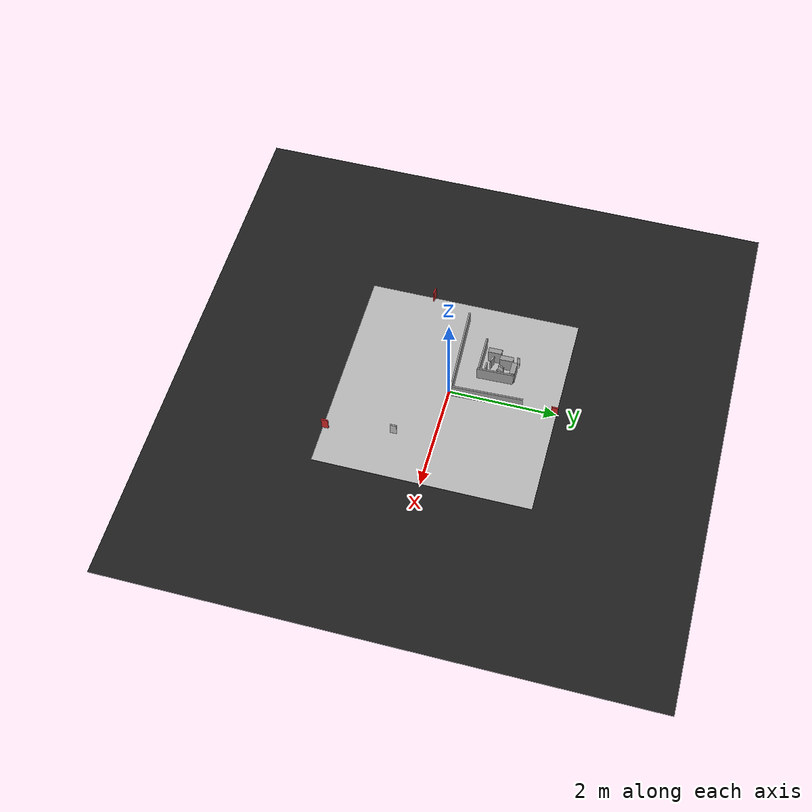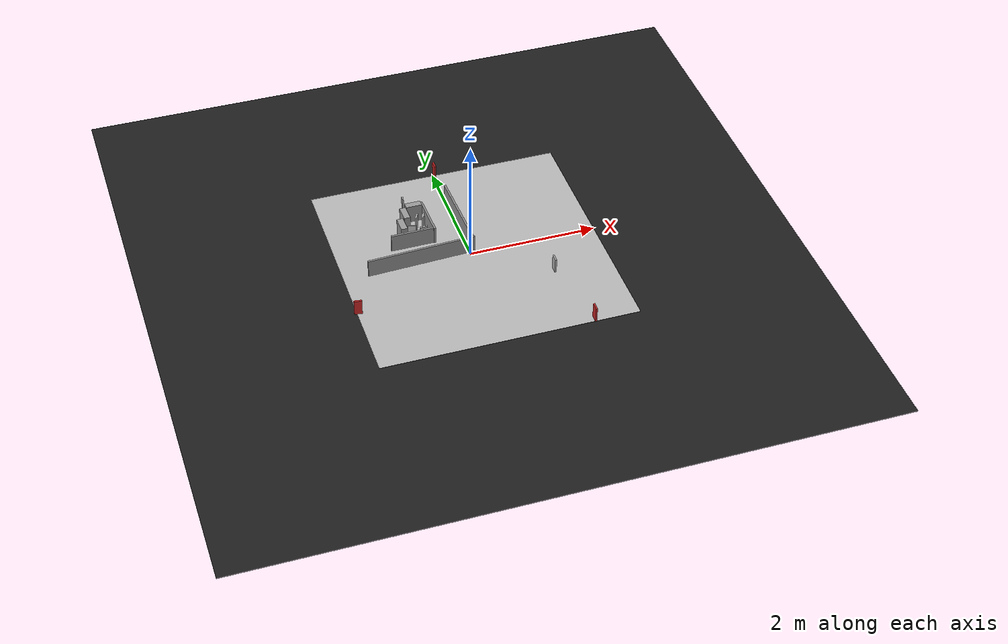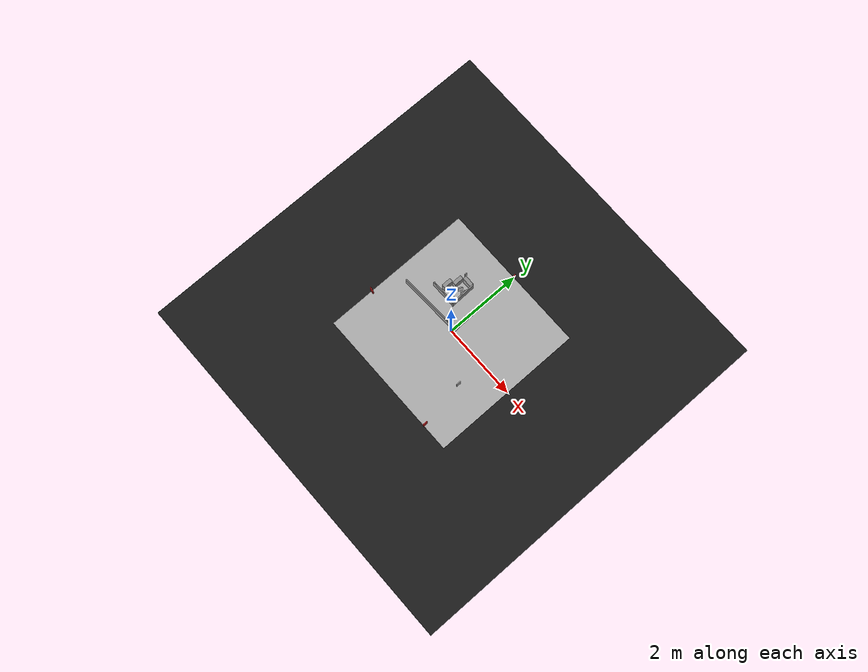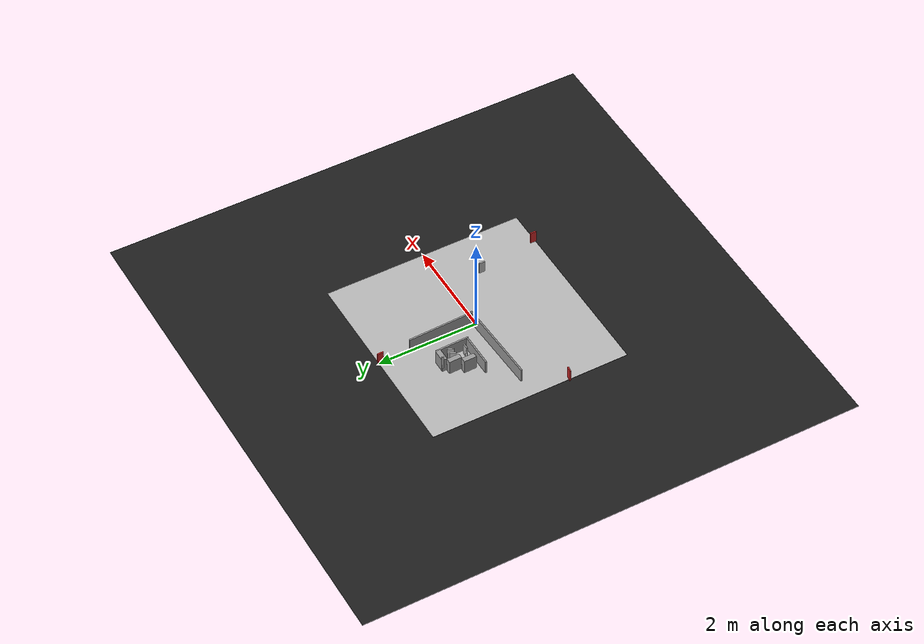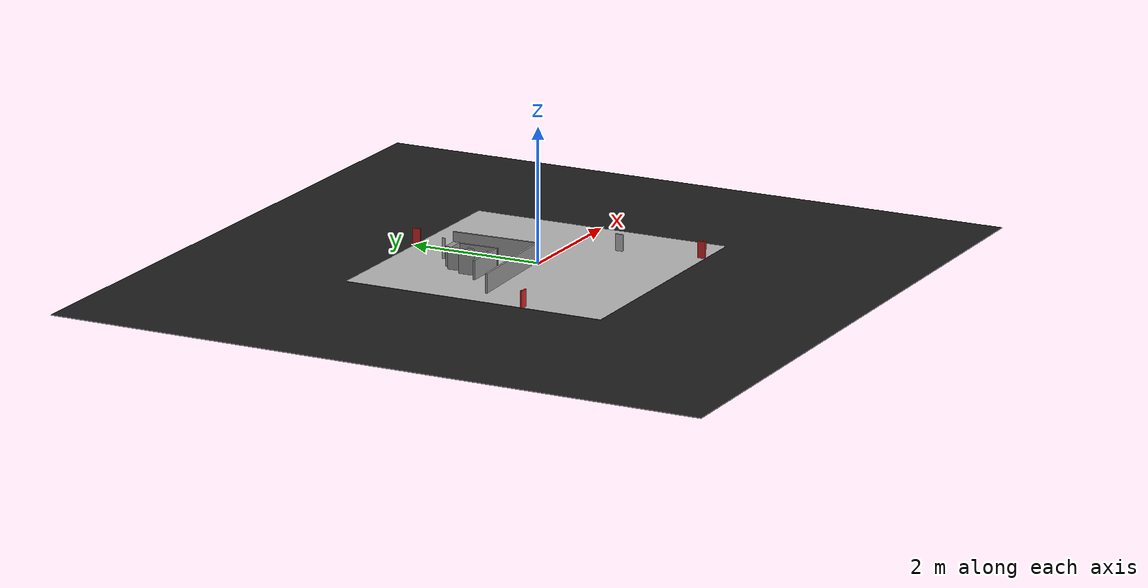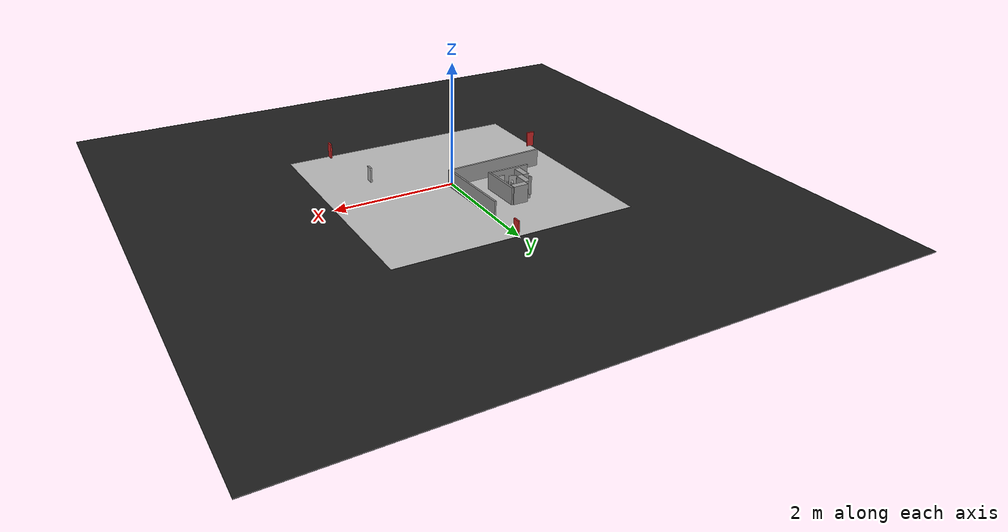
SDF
<sdf version="1.7">
 <world name="default">
  <scene>
   <ambient>0.8 0.8 0.8 1</ambient>
   <shadows>0</shadows>
   <grid>0</grid>
   <background>0.7 0.7 0.7 1</background>
  </scene>
  <model name="course">
   <static>1</static>
   <link name="course_link">
    <collision name="course_collision">
     <geometry><plane><normal>0 0 1</normal><size>4 4</size></plane></geometry>
     <surface><friction><ode><mu>100</mu><mu2>50</mu2></ode></friction></surface>
    </collision>
    <visual name="course_visual">
     <cast_shadows>0</cast_shadows>
     <geometry><plane><normal>0 0 1</normal><size>4 4</size></plane></geometry>
     <material>
      <script>
       <uri>model://turtlebot3_autorace_2020/course/materials/scripts</uri>
       <uri>model://turtlebot3_autorace_2020/course/materials/textures</uri>
       <name>course</name>
      </script>
     </material>
    </visual>
   </link>
   <pose>0 0 0 0 0 -3.14</pose>
  </model>
  <model name="traffic_bar">
   <static>0</static>
   <link name="traffic_bar">
    <collision name="collision"><geometry><box><size>0.3 0.02 0.05</size></box></geometry></collision>
    <visual name="visual">
     <geometry><box><size>0.3 0.02 0.05</size></box></geometry>
     <material>
      <script>
       <uri>model://turtlebot3_autorace_2020/traffic_bar/materials/scripts</uri>
       <uri>model://turtlebot3_autorace_2020/traffic_bar/materials/textures</uri>
       <name>traffic_bar</name>
      </script>
     </material>
    </visual>
    <inertial>
     <inertia><ixx>1</ixx><ixy>0</ixy><ixz>0</ixz><iyy>1</iyy><iyz>0</iyz><izz>1</izz></inertia>
     <mass>1</mass>
    </inertial>
   </link>
   <plugin name="traffic_bar_plugin" filename="libtraffic_bar_plugin.so"/>
   <pose>-0.75 1.11 0.275 0 -1.57 -1.57</pose>
  </model>
  <model name="traffic_light">
   <link name="traffic_light">
    <collision name="collision"><geometry><box><size>0.12 0.025 0.25</size></box></geometry></collision>
    <visual name="visual">
     <geometry><box><size>0.12 0.025 0.25</size></box></geometry>
     <material>
      <script>
       <uri>model://turtlebot3_autorace_2020/traffic_light/materials/scripts</uri>
       <uri>model://turtlebot3_autorace_2020/traffic_light/materials/textures</uri>
       <name>traffic_light_red</name>
      </script>
     </material>
    </visual>
   </link>
   <plugin name="traffic_light_plugin" filename="libtraffic_light_plugin.so"/>
   <static>1</static>
   <pose>1.3 -1.95 0.13 0 0 -1.57</pose>
  </model>
  <model name="traffic_stop">
   <static>1</static>
   <link name="box">
    <collision name="collision"><geometry><box><size>0.12 0.025 0.25</size></box></geometry></collision>
    <visual name="visual">
     <geometry><box><size>0.12 0.025 0.25</size></box></geometry>
     <material>
      <script>
       <uri>model://turtlebot3_autorace_2020/traffic_stop/materials/scripts</uri>
       <uri>model://turtlebot3_autorace_2020/traffic_stop/materials/textures</uri>
       <name>traffic_stop</name>
      </script>
     </material>
    </visual>
   </link>
   <pose>-0.508677 0.811402 0.125 0 0 -1.96296</pose>
  </model>
  <model name="traffic_construction">
   <static>1</static>
   <link name="box">
    <collision name="collision"><geometry><box><size>0.12 0.025 0.25</size></box></geometry></collision>
    <visual name="visual">
     <geometry><box><size>0.12 0.025 0.25</size></box></geometry>
     <material>
      <script>
       <uri>model://turtlebot3_autorace_2020/traffic_construction/materials/scripts</uri>
       <uri>model://turtlebot3_autorace_2020/traffic_construction/materials/textures</uri>
       <name>traffic_construction</name>
      </script>
     </material>
    </visual>
   </link>
   <pose>-0.612076 0.81992 0.125 0 0 -2.02315</pose>
  </model>
  <model name="traffic_intersection">
   <static>1</static>
   <link name="box">
    <collision name="collision"><geometry><box><size>0.12 0.025 0.25</size></box></geometry></collision>
    <visual name="visual">
     <geometry><box><size>0.12 0.025 0.25</size></box></geometry>
     <material>
      <script>
       <uri>model://turtlebot3_autorace_2020/traffic_intersection/materials/scripts</uri>
       <uri>model://turtlebot3_autorace_2020/traffic_intersection/materials/textures</uri>
       <name>traffic_intersection</name>
      </script>
     </material>
    </visual>
   </link>
   <pose>-0.740194 0.623543 0.125 0 0 -0.343422</pose>
  </model>
  <model name="traffic_noentry">
   <static>1</static>
   <link name="box">
    <collision name="collision"><geometry><box><size>0.12 0.025 0.25</size></box></geometry></collision>
    <visual name="visual">
     <geometry><box><size>0.12 0.025 0.25</size></box></geometry>
     <material>
      <script>
       <uri>model://turtlebot3_autorace_2020/traffic_noentry/materials/scripts</uri>
       <uri>model://turtlebot3_autorace_2020/traffic_noentry/materials/textures</uri>
       <name>traffic_noentry</name>
      </script>
     </material>
    </visual>
   </link>
   <pose>-0.577583 0.544707 0.125 0 -0 0</pose>
  </model>
  <model name="traffic_right">
   <static>1</static>
   <link name="box">
    <collision name="collision"><geometry><box><size>0.12 0.025 0.25</size></box></geometry></collision>
    <visual name="visual">
     <geometry><box><size>0.12 0.025 0.25</size></box></geometry>
     <material>
      <script>
       <uri>model://turtlebot3_autorace_2020/traffic_right/materials/scripts</uri>
       <uri>model://turtlebot3_autorace_2020/traffic_right/materials/textures</uri>
       <name>traffic_right</name>
      </script>
     </material>
    </visual>
   </link>
   <pose>1.09675 -0.737974 0.125 0 0 -1.57</pose>
  </model>
  <light name="sun" type="directional">
   <pose>0 0 10 0 -0 0</pose>
   <diffuse>0.8 0.8 0.8 1</diffuse>
   <specular>0.1 0.1 0.1 1</specular>
   <attenuation>
    <range>1000</range>
    <constant>0.9</constant>
    <linear>0.01</linear>
    <quadratic>0.001</quadratic>
   </attenuation>
   <direction>-0.5 0.5 -1</direction>
   <spot><inner_angle>0</inner_angle><outer_angle>0</outer_angle><falloff>0</falloff></spot>
  </light>
  <model name="ground2">
   <pose>0 0 -0.1 0 -0 0</pose>
   <static>1</static>
   <link name="ground">
    <collision name="ground_coll"><geometry><box><size>8 8 0.01</size></box></geometry></collision>
    <visual name="ground_vis">
     <geometry><box><size>10 10 0.01</size></box></geometry>
     <material>
      <script><uri>file://media/materials/scripts/gazebo.material</uri><name>Gazebo/FlatBlack</name></script>
     </material>
    </visual>
   </link>
  </model>
  <gravity>0 0 -9.8</gravity>
  <magnetic_field>6e-06 2.3e-05 -4.2e-05</magnetic_field>
  <atmosphere type="adiabatic"/>
  <physics name="default_physics" default="0" type="ode">
   <max_step_size>0.001</max_step_size>
   <real_time_factor>1</real_time_factor>
   <real_time_update_rate>1000</real_time_update_rate>
  </physics>
  <spherical_coordinates>
   <surface_model>EARTH_WGS84</surface_model>
   <latitude_deg>0</latitude_deg>
   <longitude_deg>0</longitude_deg>
   <elevation>0</elevation>
   <heading_deg>0</heading_deg>
  </spherical_coordinates>
  <light name="user_point_light_1" type="point">
   <pose>-1.64815 0.604519 1 0 -0 0</pose>
   <diffuse>0.5 0.5 0.5 1</diffuse>
   <specular>0.1 0.1 0.1 1</specular>
   <attenuation>
    <range>20</range>
    <constant>0.5</constant>
    <linear>0.01</linear>
    <quadratic>0.001</quadratic>
   </attenuation>
   <cast_shadows>0</cast_shadows>
   <direction>0 0 -1</direction>
   <spot><inner_angle>0</inner_angle><outer_angle>0</outer_angle><falloff>0</falloff></spot>
  </light>
  <light name="user_point_light_2" type="point">
   <pose>1.63854 1.69565 1 0 -0 0</pose>
   <diffuse>0.5 0.5 0.5 1</diffuse>
   <specular>0.1 0.1 0.1 1</specular>
   <attenuation>
    <range>20</range>
    <constant>0.5</constant>
    <linear>0.01</linear>
    <quadratic>0.001</quadratic>
   </attenuation>
   <cast_shadows>0</cast_shadows>
   <direction>0 0 -1</direction>
   <spot><inner_angle>0</inner_angle><outer_angle>0</outer_angle><falloff>0</falloff></spot>
  </light>
  <light name="user_point_light_3" type="point">
   <pose>0.42 -3.31 1 0 -0 0</pose>
   <diffuse>0.5 0.5 0.5 1</diffuse>
   <specular>0.1 0.1 0.1 1</specular>
   <attenuation>
    <range>20</range>
    <constant>0.5</constant>
    <linear>0.01</linear>
    <quadratic>0.001</quadratic>
   </attenuation>
   <cast_shadows>0</cast_shadows>
   <direction>0 0 -1</direction>
   <spot><inner_angle>0</inner_angle><outer_angle>0</outer_angle><falloff>0</falloff></spot>
  </light>
  <model name="barrier_1">
   <link name="link">
    <inertial>
     <mass>1</mass>
     <inertia>
      <ixx>0.166667</ixx>
      <ixy>0</ixy>
      <ixz>0</ixz>
      <iyy>0.166667</iyy>
      <iyz>0</iyz>
      <izz>0.166667</izz>
     </inertia>
    </inertial>
    <visual name="visual">
     <geometry><box><size>0.25 0.1 0.3</size></box></geometry>
     <material>
      <script><name>Gazebo/Grey</name><uri>file://media/materials/scripts/gazebo.material</uri></script>
      <shader type="pixel"><normal_map>__default__</normal_map></shader>
      <ambient>0.3 0.3 0.3 1</ambient>
      <diffuse>0.7 0.7 0.7 1</diffuse>
      <specular>0.01 0.01 0.01 1</specular>
      <emissive>0 0 0 1</emissive>
     </material>
    </visual>
    <collision name="collision">
     <geometry><box><size>0.25 0.1 0.3</size></box></geometry>
     <surface>
      <friction>
       <ode><mu>1</mu><mu2>1</mu2><fdir1>0 0 0</fdir1><slip1>0</slip1><slip2>0</slip2></ode>
       <torsional>
        <coefficient>1</coefficient>
        <patch_radius>0</patch_radius>
        <surface_radius>0</surface_radius>
        <use_patch_radius>1</use_patch_radius>
        <ode><slip>0</slip></ode>
       </torsional>
      </friction>
      <bounce><restitution_coefficient>0</restitution_coefficient><threshold>1e+06</threshold></bounce>
      <contact>
       <collide_without_contact>0</collide_without_contact>
       <collide_without_contact_bitmask>1</collide_without_contact_bitmask>
       <collide_bitmask>1</collide_bitmask>
       <ode>
        <soft_cfm>0</soft_cfm>
        <soft_erp>0.2</soft_erp>
        <kp>1e+13</kp>
        <kd>1</kd>
        <max_vel>0.01</max_vel>
        <min_depth>0</min_depth>
       </ode>
       <bullet>
        <split_impulse>1</split_impulse>
        <split_impulse_penetration_threshold>-0.01</split_impulse_penetration_threshold>
        <soft_cfm>0</soft_cfm>
        <soft_erp>0.2</soft_erp>
        <kp>1e+13</kp>
        <kd>1</kd>
       </bullet>
      </contact>
     </surface>
    </collision>
   </link>
   <static>0</static>
   <pose>-0.889821 0.647114 0.149996 1e-06 4e-06 1.58316</pose>
  </model>
  <model name="barrier_2">
   <link name="link">
    <inertial>
     <mass>1</mass>
     <inertia>
      <ixx>0.166667</ixx>
      <ixy>0</ixy>
      <ixz>0</ixz>
      <iyy>0.166667</iyy>
      <iyz>0</iyz>
      <izz>0.166667</izz>
     </inertia>
    </inertial>
    <visual name="visual">
     <geometry><box><size>0.25 0.1 0.3</size></box></geometry>
     <material>
      <script><name>Gazebo/Grey</name><uri>file://media/materials/scripts/gazebo.material</uri></script>
      <shader type="pixel"><normal_map>__default__</normal_map></shader>
      <ambient>0.3 0.3 0.3 1</ambient>
      <diffuse>0.7 0.7 0.7 1</diffuse>
      <specular>0.01 0.01 0.01 1</specular>
      <emissive>0 0 0 1</emissive>
     </material>
    </visual>
    <collision name="collision">
     <geometry><box><size>0.25 0.1 0.3</size></box></geometry>
     <surface>
      <friction>
       <ode><mu>1</mu><mu2>1</mu2><fdir1>0 0 0</fdir1><slip1>0</slip1><slip2>0</slip2></ode>
       <torsional>
        <coefficient>1</coefficient>
        <patch_radius>0</patch_radius>
        <surface_radius>0</surface_radius>
        <use_patch_radius>1</use_patch_radius>
        <ode><slip>0</slip></ode>
       </torsional>
      </friction>
      <bounce><restitution_coefficient>0</restitution_coefficient><threshold>1e+06</threshold></bounce>
      <contact>
       <collide_without_contact>0</collide_without_contact>
       <collide_without_contact_bitmask>1</collide_without_contact_bitmask>
       <collide_bitmask>1</collide_bitmask>
       <ode>
        <soft_cfm>0</soft_cfm>
        <soft_erp>0.2</soft_erp>
        <kp>1e+13</kp>
        <kd>1</kd>
        <max_vel>0.01</max_vel>
        <min_depth>0</min_depth>
       </ode>
       <bullet>
        <split_impulse>1</split_impulse>
        <split_impulse_penetration_threshold>-0.01</split_impulse_penetration_threshold>
        <soft_cfm>0</soft_cfm>
        <soft_erp>0.2</soft_erp>
        <kp>1e+13</kp>
        <kd>1</kd>
       </bullet>
      </contact>
     </surface>
    </collision>
   </link>
   <static>0</static>
   <pose>-0.596513 1.05239 0.149999 1e-06 -1e-06 -0.000389</pose>
  </model>
  <model name="barrier_3">
   <link name="link">
    <inertial>
     <mass>1</mass>
     <inertia>
      <ixx>0.166667</ixx>
      <ixy>0</ixy>
      <ixz>0</ixz>
      <iyy>0.166667</iyy>
      <iyz>0</iyz>
      <izz>0.166667</izz>
     </inertia>
    </inertial>
    <visual name="visual">
     <geometry><box><size>0.25 0.1 0.3</size></box></geometry>
     <material>
      <script><name>Gazebo/Grey</name><uri>file://media/materials/scripts/gazebo.material</uri></script>
      <shader type="pixel"><normal_map>__default__</normal_map></shader>
      <ambient>0.3 0.3 0.3 1</ambient>
      <diffuse>0.7 0.7 0.7 1</diffuse>
      <specular>0.01 0.01 0.01 1</specular>
      <emissive>0 0 0 1</emissive>
     </material>
    </visual>
    <collision name="collision">
     <geometry><box><size>0.25 0.1 0.3</size></box></geometry>
     <surface>
      <friction>
       <ode><mu>1</mu><mu2>1</mu2><fdir1>0 0 0</fdir1><slip1>0</slip1><slip2>0</slip2></ode>
       <torsional>
        <coefficient>1</coefficient>
        <patch_radius>0</patch_radius>
        <surface_radius>0</surface_radius>
        <use_patch_radius>1</use_patch_radius>
        <ode><slip>0</slip></ode>
       </torsional>
      </friction>
      <bounce><restitution_coefficient>0</restitution_coefficient><threshold>1e+06</threshold></bounce>
      <contact>
       <collide_without_contact>0</collide_without_contact>
       <collide_without_contact_bitmask>1</collide_without_contact_bitmask>
       <collide_bitmask>1</collide_bitmask>
       <ode>
        <soft_cfm>0</soft_cfm>
        <soft_erp>0.2</soft_erp>
        <kp>1e+13</kp>
        <kd>1</kd>
        <max_vel>0.01</max_vel>
        <min_depth>0</min_depth>
       </ode>
       <bullet>
        <split_impulse>1</split_impulse>
        <split_impulse_penetration_threshold>-0.01</split_impulse_penetration_threshold>
        <soft_cfm>0</soft_cfm>
        <soft_erp>0.2</soft_erp>
        <kp>1e+13</kp>
        <kd>1</kd>
       </bullet>
      </contact>
     </surface>
    </collision>
   </link>
   <static>0</static>
   <pose>-0.77686 0.887561 0.149994 1e-06 4e-06 1.59086</pose>
  </model>
  <audio><device>default</device></audio>
  <model name="traffic_light_clone">
   <link name="traffic_light">
    <collision name="collision"><geometry><box><size>0.12 0.025 0.25</size></box></geometry></collision>
    <visual name="visual">
     <geometry><box><size>0.12 0.025 0.25</size></box></geometry>
     <material>
      <script>
       <uri>model://turtlebot3_autorace_2020/traffic_light/materials/scripts</uri>
       <uri>model://turtlebot3_autorace_2020/traffic_light/materials/textures</uri>
       <name>traffic_light_red</name>
      </script>
     </material>
    </visual>
   </link>
   <plugin name="traffic_light_plugin" filename="libtraffic_light_plugin.so"/>
   <static>1</static>
   <pose>0.015436 1.96121 0.13 0 0 -1.57</pose>
  </model>
  <model name="traffic_light_clone_0">
   <link name="traffic_light">
    <collision name="collision"><geometry><box><size>0.12 0.025 0.25</size></box></geometry></collision>
    <visual name="visual">
     <geometry><box><size>0.12 0.025 0.25</size></box></geometry>
     <material>
      <script>
       <uri>model://turtlebot3_autorace_2020/traffic_light/materials/scripts</uri>
       <uri>model://turtlebot3_autorace_2020/traffic_light/materials/textures</uri>
       <name>traffic_light_red</name>
      </script>
     </material>
    </visual>
   </link>
   <plugin name="traffic_light_plugin" filename="libtraffic_light_plugin.so"/>
   <static>1</static>
   <pose>-1.978 -0.795109 0.13 0 0 -0.135505</pose>
  </model>
  <model name="barrier_1_0_clone">
   <link name="link">
    <inertial>
     <mass>0.766722</mass>
     <inertia>
      <ixx>0.00538113</ixx>
      <ixy>0</ixy>
      <ixz>0</ixz>
      <iyy>0.034274</iyy>
      <iyz>0</iyz>
      <izz>0.0290047</izz>
     </inertia>
    </inertial>
    <pose>-0.14028 -0.115534 -0 0 -0 -1.45521</pose>
    <visual name="visual">
     <geometry><box><size>0.673111 0.029579 0.288696</size></box></geometry>
     <material>
      <script><name>Gazebo/Grey</name><uri>file://media/materials/scripts/gazebo.material</uri></script>
      <shader type="pixel"><normal_map>__default__</normal_map></shader>
      <ambient>0.3 0.3 0.3 1</ambient>
      <diffuse>0.7 0.7 0.7 1</diffuse>
      <specular>0.01 0.01 0.01 1</specular>
      <emissive>0 0 0 1</emissive>
     </material>
    </visual>
    <collision name="collision">
     <geometry><box><size>0.673111 0.029579 0.288696</size></box></geometry>
     <surface>
      <friction>
       <ode><mu>1</mu><mu2>1</mu2><fdir1>0 0 0</fdir1><slip1>0</slip1><slip2>0</slip2></ode>
       <torsional>
        <coefficient>1</coefficient>
        <patch_radius>0</patch_radius>
        <surface_radius>0</surface_radius>
        <use_patch_radius>1</use_patch_radius>
        <ode><slip>0</slip></ode>
       </torsional>
      </friction>
      <bounce><restitution_coefficient>0</restitution_coefficient><threshold>1e+06</threshold></bounce>
      <contact>
       <collide_without_contact>0</collide_without_contact>
       <collide_without_contact_bitmask>1</collide_without_contact_bitmask>
       <collide_bitmask>1</collide_bitmask>
       <ode>
        <soft_cfm>0</soft_cfm>
        <soft_erp>0.2</soft_erp>
        <kp>1e+13</kp>
        <kd>1</kd>
        <max_vel>0.01</max_vel>
        <min_depth>0</min_depth>
       </ode>
       <bullet>
        <split_impulse>1</split_impulse>
        <split_impulse_penetration_threshold>-0.01</split_impulse_penetration_threshold>
        <soft_cfm>0</soft_cfm>
        <soft_erp>0.2</soft_erp>
        <kp>1e+13</kp>
        <kd>1</kd>
       </bullet>
      </contact>
     </surface>
    </collision>
   </link>
   <static>0</static>
   <pose>-0.297606 0.851684 0.144345 1.1e-05 2e-06 -0.088316</pose>
  </model>
  <model name="barrier_1_0_clone_0">
   <link name="link">
    <inertial>
     <mass>0.766722</mass>
     <inertia>
      <ixx>0.00538113</ixx>
      <ixy>0</ixy>
      <ixz>0</ixz>
      <iyy>0.034274</iyy>
      <iyz>0</iyz>
      <izz>0.0290047</izz>
     </inertia>
    </inertial>
    <pose>-0.14028 -0.115534 -0 0 -0 -1.45521</pose>
    <visual name="visual">
     <geometry><box><size>0.673111 0.029579 0.288696</size></box></geometry>
     <material>
      <script><name>Gazebo/Grey</name><uri>file://media/materials/scripts/gazebo.material</uri></script>
      <shader type="pixel"><normal_map>__default__</normal_map></shader>
      <ambient>0.3 0.3 0.3 1</ambient>
      <diffuse>0.7 0.7 0.7 1</diffuse>
      <specular>0.01 0.01 0.01 1</specular>
      <emissive>0 0 0 1</emissive>
     </material>
    </visual>
    <collision name="collision">
     <geometry><box><size>0.673111 0.029579 0.288696</size></box></geometry>
     <surface>
      <friction>
       <ode><mu>1</mu><mu2>1</mu2><fdir1>0 0 0</fdir1><slip1>0</slip1><slip2>0</slip2></ode>
       <torsional>
        <coefficient>1</coefficient>
        <patch_radius>0</patch_radius>
        <surface_radius>0</surface_radius>
        <use_patch_radius>1</use_patch_radius>
        <ode><slip>0</slip></ode>
       </torsional>
      </friction>
      <bounce><restitution_coefficient>0</restitution_coefficient><threshold>1e+06</threshold></bounce>
      <contact>
       <collide_without_contact>0</collide_without_contact>
       <collide_without_contact_bitmask>1</collide_without_contact_bitmask>
       <collide_bitmask>1</collide_bitmask>
       <ode>
        <soft_cfm>0</soft_cfm>
        <soft_erp>0.2</soft_erp>
        <kp>1e+13</kp>
        <kd>1</kd>
        <max_vel>0.01</max_vel>
        <min_depth>0</min_depth>
       </ode>
       <bullet>
        <split_impulse>1</split_impulse>
        <split_impulse_penetration_threshold>-0.01</split_impulse_penetration_threshold>
        <soft_cfm>0</soft_cfm>
        <soft_erp>0.2</soft_erp>
        <kp>1e+13</kp>
        <kd>1</kd>
       </bullet>
      </contact>
     </surface>
    </collision>
   </link>
   <static>0</static>
   <pose>-0.690947 0.281465 0.144345 1.5e-05 -0 -1.67877</pose>
  </model>
  <model name="barrier_1_0_clone_clone">
   <link name="link">
    <inertial>
     <mass>1.48345</mass>
     <inertia>
      <ixx>0.0104114</ixx>
      <ixy>0</ixy>
      <ixz>0</ixz>
      <iyy>0.219975</iyy>
      <iyz>0</iyz>
      <izz>0.20978</izz>
     </inertia>
    </inertial>
    <pose>-0.14028 -0.115534 -0 -0 -0 -1.45521</pose>
    <visual name="visual">
     <geometry><box><size>1.30234 0.029579 0.288696</size></box></geometry>
     <material>
      <script><name>Gazebo/Grey</name><uri>file://media/materials/scripts/gazebo.material</uri></script>
      <shader type="pixel"><normal_map>__default__</normal_map></shader>
      <ambient>0.3 0.3 0.3 1</ambient>
      <diffuse>0.7 0.7 0.7 1</diffuse>
      <specular>0.01 0.01 0.01 1</specular>
      <emissive>0 0 0 1</emissive>
     </material>
    </visual>
    <collision name="collision">
     <geometry><box><size>1.30234 0.029579 0.288696</size></box></geometry>
     <surface>
      <friction>
       <ode><mu>1</mu><mu2>1</mu2><fdir1>0 0 0</fdir1><slip1>0</slip1><slip2>0</slip2></ode>
       <torsional>
        <coefficient>1</coefficient>
        <patch_radius>0</patch_radius>
        <surface_radius>0</surface_radius>
        <use_patch_radius>1</use_patch_radius>
        <ode><slip>0</slip></ode>
       </torsional>
      </friction>
      <bounce><restitution_coefficient>0</restitution_coefficient><threshold>1e+06</threshold></bounce>
      <contact>
       <collide_without_contact>0</collide_without_contact>
       <collide_without_contact_bitmask>1</collide_without_contact_bitmask>
       <collide_bitmask>1</collide_bitmask>
       <ode>
        <soft_cfm>0</soft_cfm>
        <soft_erp>0.2</soft_erp>
        <kp>1e+13</kp>
        <kd>1</kd>
        <max_vel>0.01</max_vel>
        <min_depth>0</min_depth>
       </ode>
       <bullet>
        <split_impulse>1</split_impulse>
        <split_impulse_penetration_threshold>-0.01</split_impulse_penetration_threshold>
        <soft_cfm>0</soft_cfm>
        <soft_erp>0.2</soft_erp>
        <kp>1e+13</kp>
        <kd>1</kd>
       </bullet>
      </contact>
     </surface>
    </collision>
   </link>
   <static>0</static>
   <pose>0.185738 0.822929 0.144337 -1.4e-05 -0 -0.0814</pose>
  </model>
  <model name="barrier_1_0_clone_clone_clone">
   <link name="link">
    <inertial>
     <mass>1.9395</mass>
     <inertia>
      <ixx>0.0136121</ixx>
      <ixy>0</ixy>
      <ixz>0</ixz>
      <iyy>0.48206</iyy>
      <iyz>0</iyz>
      <izz>0.468731</izz>
     </inertia>
    </inertial>
    <pose>-0.14028 -0.115534 -0 -0 -0 -1.45521</pose>
    <visual name="visual">
     <geometry><box><size>1.70271 0.029579 0.288696</size></box></geometry>
     <material>
      <script><name>Gazebo/Grey</name><uri>file://media/materials/scripts/gazebo.material</uri></script>
      <shader type="pixel"><normal_map>__default__</normal_map></shader>
      <ambient>0.3 0.3 0.3 1</ambient>
      <diffuse>0.7 0.7 0.7 1</diffuse>
      <specular>0.01 0.01 0.01 1</specular>
      <emissive>0 0 0 1</emissive>
     </material>
    </visual>
    <collision name="collision">
     <geometry><box><size>1.70271 0.029579 0.288696</size></box></geometry>
     <surface>
      <friction>
       <ode><mu>1</mu><mu2>1</mu2><fdir1>0 0 0</fdir1><slip1>0</slip1><slip2>0</slip2></ode>
       <torsional>
        <coefficient>1</coefficient>
        <patch_radius>0</patch_radius>
        <surface_radius>0</surface_radius>
        <use_patch_radius>1</use_patch_radius>
        <ode><slip>0</slip></ode>
       </torsional>
      </friction>
      <bounce><restitution_coefficient>0</restitution_coefficient><threshold>1e+06</threshold></bounce>
      <contact>
       <collide_without_contact>0</collide_without_contact>
       <collide_without_contact_bitmask>1</collide_without_contact_bitmask>
       <collide_bitmask>1</collide_bitmask>
       <ode>
        <soft_cfm>0</soft_cfm>
        <soft_erp>0.2</soft_erp>
        <kp>1e+13</kp>
        <kd>1</kd>
        <max_vel>0.01</max_vel>
        <min_depth>0</min_depth>
       </ode>
       <bullet>
        <split_impulse>1</split_impulse>
        <split_impulse_penetration_threshold>-0.01</split_impulse_penetration_threshold>
        <soft_cfm>0</soft_cfm>
        <soft_erp>0.2</soft_erp>
        <kp>1e+13</kp>
        <kd>1</kd>
       </bullet>
      </contact>
     </surface>
    </collision>
   </link>
   <static>0</static>
   <pose>-0.659242 -0.133804 0.144338 1.2e-05 3e-06 -1.63968</pose>
  </model>
 </world>
</sdf>
